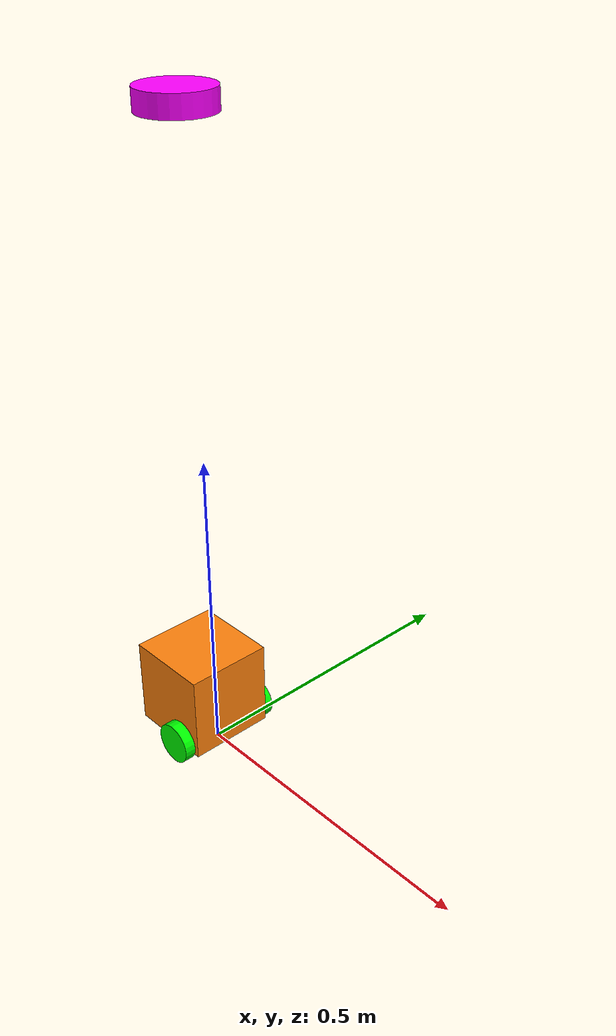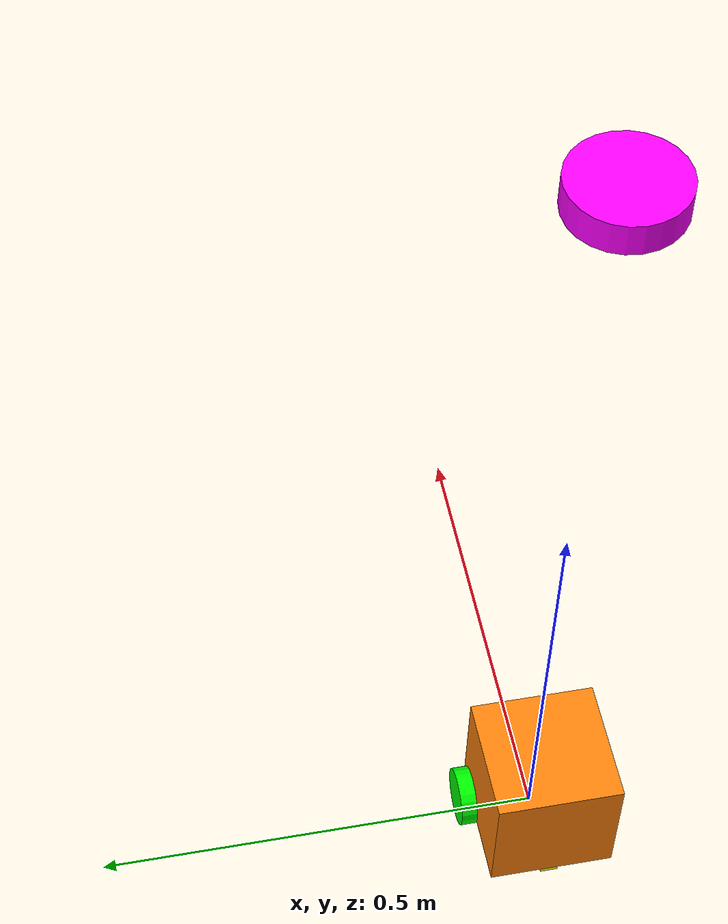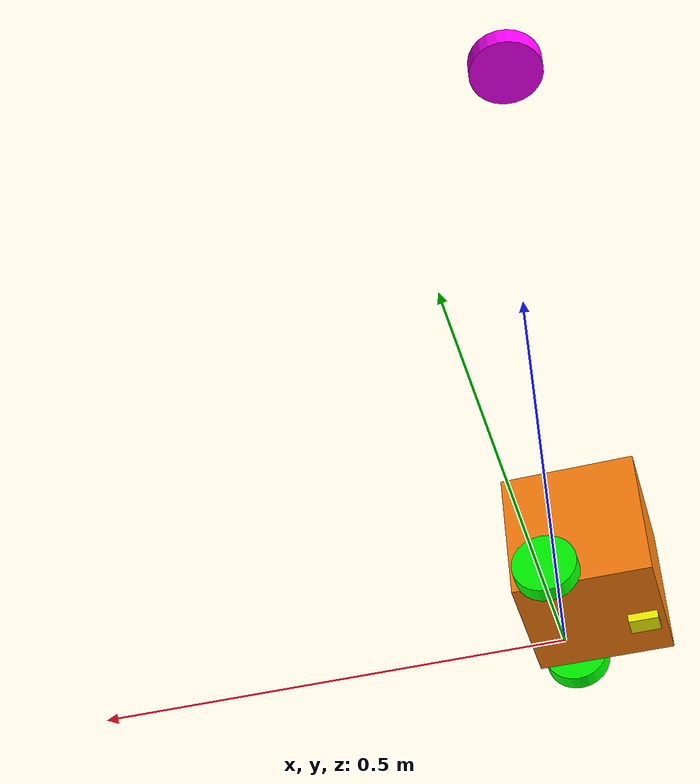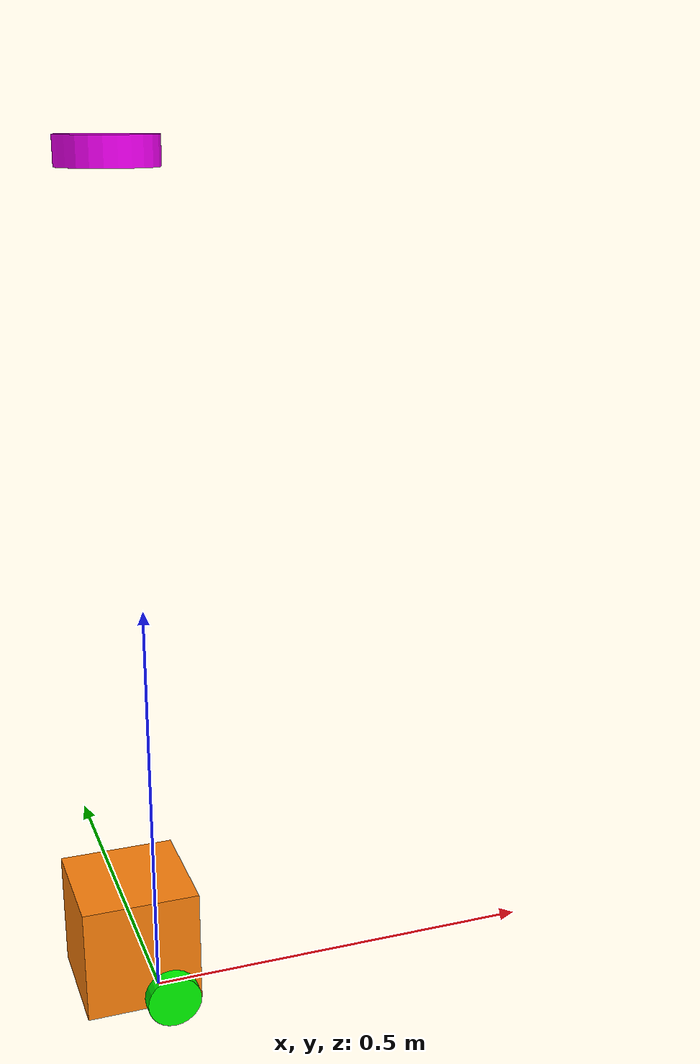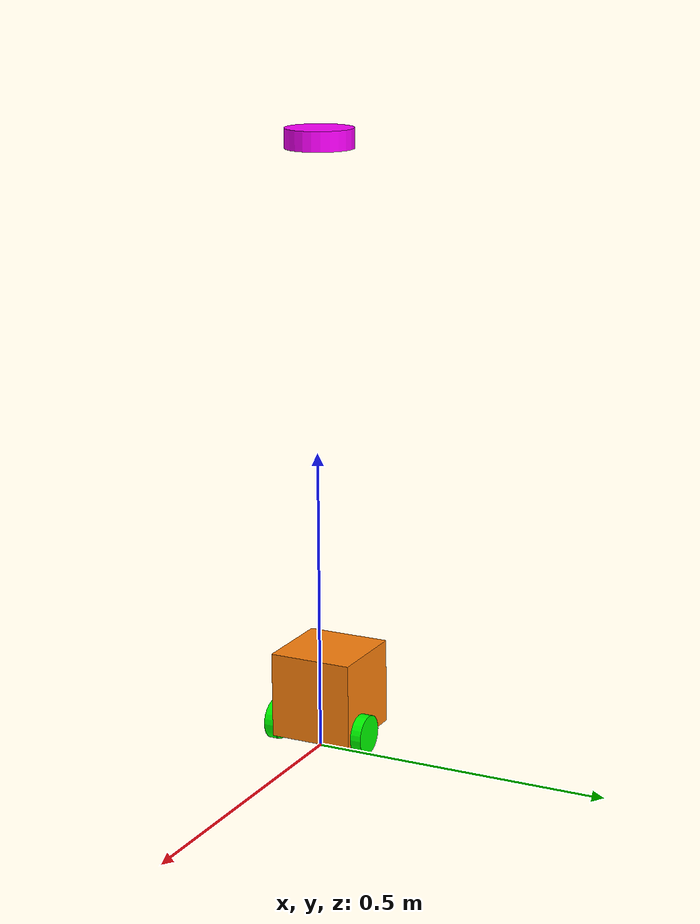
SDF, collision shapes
<?xml version='1.0'?>
<sdf version='1.5'>
  <model name='tergeo'>

    <!-- body -->
    <link name='base_link'>
      <pose>0 0 0.01 0 0 0</pose>

      <!-- body -->
      <visual name='base_visual'>
        <pose>0.06 -0.01 0.0 0 0 0</pose>
        <geometry>
          <mesh>
            <scale>1 1 1</scale>
            <uri>model://model_turtlebot/meshes/sc65b.dae</uri>
          </mesh>
        </geometry>
        <material>
          <!-- Gazebo/Orange -->
          <ambient>1 0.5088 0.0468 1</ambient>
          <diffuse>1 0.5088 0.0468 1</diffuse>
          <specular>0.5 0.5 0.5 128</specular>
        </material>
      </visual>

      <collision name='body_collision'>
        <pose>-0.032 0 0.080 0 0 0</pose>
        <geometry>
          <box>
            <size>0.140 0.140 0.143</size>
          </box>
        </geometry>
      </collision>

      <inertial>
        <pose>0 0 0 0 0 0</pose>
        <mass>8.2573504e-01</mass>
        <inertia>
          <ixx>2.2124416e-03</ixx>
          <iyy>2.1193702e-03</iyy>
          <izz>2.0064271e-03</izz>
          <ixy>-1.2294101e-05</ixy>
          <ixz>3.4938785e-05</ixz>
          <iyz>-5.0120904e-06</iyz>
        </inertia>
      </inertial>
    </link>

    <!-- left wheel joint -->
    <joint name='left_wheel_joint' type='revolute'>
      <parent>base_link</parent>
      <child>left_wheel_link</child>
      <axis>
        <use_parent_model_frame>true</use_parent_model_frame>
        <xyz>0 1 0</xyz>
      </axis>
    </joint>

    <!-- left wheel link -->
    <link name='left_wheel_link'>
      <pose>0.0 0.08 0.033 -1.570796326 0 0</pose>
      <visual name='left_wheel_visual'>
        <pose>0.0 0.0 0.0 1.570796326 0.0 0.0</pose>
        <geometry>
          <mesh>
            <scale>0.001 0.001 0.001</scale>
            <uri>model://model_turtlebot/meshes/wheels/left_tire.stl</uri>
          </mesh>
        </geometry>
        <material>
          <ambient> 0 1 0 </ambient>
          <diffuse> 0 1 0 </diffuse>
          <specular> 0.1 0.1 0.1 1 1 </specular>
        </material>
      </visual>

      <collision name='left_wheel_collision'>
        <pose>0 0 0 0 0 0</pose>
        <geometry>
          <cylinder>
            <radius>0.033</radius>
            <length>0.018</length>
          </cylinder>
        </geometry>
        <surface>
          <friction>
            <ode>
              <mu>0.1</mu>
              <mu2>0.1</mu2>
              <fdir1>1 0 0</fdir1>
            </ode>
          </friction>
          <contact>
            <ode>
              <kp>500000.000000</kp>
              <kd>10.000000</kd>
              <max_vel>0.1</max_vel>
              <min_depth>0.001</min_depth>
            </ode>
          </contact>
        </surface>
      </collision>

      <inertial>
        <pose>0 0 0 0 0 0</pose>
        <mass>2.8498940e-02</mass>
        <inertia>
          <ixx>1.1175580e-05</ixx>
          <iyy>1.1192413e-05</iyy>
          <izz>2.0712558e-05</izz>
          <ixy>-4.2369783e-11</ixy>
          <ixz>-5.9381719e-09</ixz>
          <iyz>-1.4400107e-11</iyz>
        </inertia>
      </inertial>
    </link>

    <!-- right wheel joint -->
    <joint name='right_wheel_joint' type='revolute'>
      <parent>base_link</parent>
      <child>right_wheel_link</child>
      <axis>
        <use_parent_model_frame>true</use_parent_model_frame>
        <xyz>0 1 0</xyz>
      </axis>
    </joint>

    <!-- right wheel link -->
    <link name='right_wheel_link'>
      <pose>0.0 -0.08 0.033 -1.570796326 0 0</pose>
      <visual name='right_wheel_visual'>
        <pose>0.0 0.0 0.0 1.570796326 0.0 0.0</pose>
        <geometry>
          <mesh>
            <scale>0.001 0.001 0.001</scale>
            <uri>model://model_turtlebot/meshes/wheels/right_tire.stl</uri>
          </mesh>
        </geometry>
        <material>
          <ambient> 0 1 0 </ambient>
          <diffuse> 0 1 0 </diffuse>
          <specular> 0.1 0.1 0.1 1 1 </specular>
        </material>
      </visual>

      <collision name='right_wheel_collision'>
        <pose>0 0 0 0 0 0</pose>
        <geometry>
          <cylinder>
            <radius>0.033</radius>
            <length>0.018</length>
          </cylinder>
        </geometry>
        <surface>
          <friction>
            <ode>
              <mu>0.1</mu>
              <mu2>0.1</mu2>
              <fdir1>1 0 0</fdir1>
            </ode>
          </friction>
          <contact>
            <ode>
              <kp>500000.000000</kp>
              <kd>10.000000</kd>
              <max_vel>0.1</max_vel>
              <min_depth>0.001</min_depth>
            </ode>
          </contact>
        </surface>
      </collision>

      <inertial>
        <pose>0 0 0 0 0 0</pose>
        <mass>2.8498940e-02</mass>
        <inertia>
          <ixx>1.1175580e-05</ixx>
          <iyy>1.1192413e-05</iyy>
          <izz>2.0712558e-05</izz>
          <ixy>-4.2369783e-11</ixy>
          <ixz>-5.9381719e-09</ixz>
          <iyz>-1.4400107e-11</iyz>
        </inertia>
      </inertial>
    </link>

    <!-- model plugin  -->
    <!-- diff drive plugin -->
    <plugin name="tergeo_controller" filename="libgazebo_ros_diff_drive.so">
      <commandTopic>cmd_vel</commandTopic>
      <odometryTopic>odom</odometryTopic>
      <odometryFrame>odom</odometryFrame>
      <odometrySource>world</odometrySource>
      <publishOdomTF>true</publishOdomTF>
      <robotBaseFrame>world</robotBaseFrame>
      <publishWheelTF>false</publishWheelTF>
      <publishTf>true</publishTf>
      <publishWheelJointState>true</publishWheelJointState>
      <legacyMode>false</legacyMode>
      <updateRate>30</updateRate>
      <leftJoint>left_wheel_joint</leftJoint>
      <rightJoint>right_wheel_joint</rightJoint>
      <wheelSeparation>0.160</wheelSeparation>
      <wheelDiameter>0.066</wheelDiameter>
      <wheelAcceleration>1</wheelAcceleration>
      <wheelTorque>10</wheelTorque>
      <rosDebugLevel>na</rosDebugLevel>
    </plugin>

    <!-- caster joint -->
    <joint name='caster_joint' type='fixed'>
      <parent>base_link</parent>
      <child>caster_link</child>
    </joint>

    <!-- caster link -->
    <link name='caster_link'>
      <pose>-0.081 0.0 0.006 -1.570796326 0 0</pose>
      <visual name='caster_visual'>
        <pose>0 0 0 0 0 0</pose>
        <geometry>
          <box>
            <size>0.030 0.009 0.020</size>
          </box>
        </geometry>
        <material>
          <ambient> 1 1 0 1 </ambient>
          <diffuse> 1 1 0 1 </diffuse>
          <specular> 0 0 0 0 0 </specular>
        </material>
      </visual>

      <collision name='caster_collision'>
        <pose>0 0 0 0 0 0</pose>
        <geometry>
          <box>
            <size>0.030 0.009 0.020</size>
          </box>
        </geometry>
        <surface>
          <friction>
            <ode>
              <mu>0.1</mu>
              <mu2>0.1</mu2>
            </ode>
          </friction>
          <contact>
            <ode>
              <kp>1000000.000000</kp>
              <kd>100.000000</kd>
              <max_vel>1.0</max_vel>
              <min_depth>0.001</min_depth>
            </ode>
          </contact>
        </surface>
      </collision>

      <inertial>
        <pose>0 0 0 0 0 0</pose>
        <mass>0.010</mass>
        <inertia>
          <ixx>0.002</ixx>
          <iyy>0.002</iyy>
          <izz>0.002</izz>
        </inertia>
      </inertial>
    </link>

    <!-- lidar joint  -->
    <joint name='lidar_joint' type='fixed'>
      <parent>base_link</parent>
      <child>lidar_link</child>
    </joint>

    <!-- lidar link -->
    <link name="lidar_link">
      <pose>-0.017 0 1.0 0 0 0</pose>
      <visual name='lidar_visual'>
        <geometry>
          <cylinder>
            <radius>0.0550</radius>
            <length>0.0315</length>
          </cylinder>
        </geometry>
        <material>
          <ambient> 1 0 1 </ambient>
          <diffuse> 1 0 1 </diffuse>
          <specular> 0.1 0.1 0.1 1 1 </specular>
        </material>
      </visual>

      <collision name='lidar_collision'>
        <geometry>
          <cylinder>
            <radius>0.0550</radius>
            <length>0.0315</length>
          </cylinder>
        </geometry>
      </collision>

      <inertial>
        <pose>0 0 0 0 0 0</pose>
        <mass>0.114</mass>
        <inertia>
          <ixx>0.001</ixx>
          <iyy>0.001</iyy>
          <izz>0.001</izz>
        </inertia>
      </inertial>

      <sensor type="ray" name="laser_16">
        <pose>0 0 0 0 0 0</pose>
        <always_on>true</always_on>
        <visualize>false</visualize>
        <update_rate>10</update_rate>
        <ray>
          <scan>
            <horizontal>
              <samples>180</samples>
              <resolution>1</resolution>
              <min_angle>-3.1415</min_angle>
              <max_angle>3.1415</max_angle>
            </horizontal>
            <vertical>
              <samples>16</samples>
              <resolution>1</resolution>
              <min_angle>-0.2618</min_angle>
              <max_angle>0.2618</max_angle>
            </vertical>
          </scan>
          <range>
            <min>0.2</min>
            <max>10.0</max>
            <resolution>0.02</resolution>
          </range>
          <noise>
            <type>gaussian</type>
            <mean>0.0</mean>
            <stddev>0.0</stddev>
          </noise>
        </ray>
        <!-- sensor plugin for lidar -->
        <plugin name="lidar_sensor" filename="libgazebo_ros_velodyne_laser.so">
          <robotNamespace>tergeo</robotNamespace>
          <topicName>/sensor/lidar16/top/pointcloud</topicName>
          <frameName>top_lidar16_link</frameName>
          <min_range>0.2</min_range>
          <max_range>10.0</max_range>
          <gaussianNoise>0.02</gaussianNoise>
        </plugin>
      </sensor>
    </link>

    <!-- imu joint -->
    <joint name='imu_joint' type='fixed'>
      <parent>base_link</parent>
      <child>imu_link</child>
    </joint>

    <!-- imu link -->
    <link name='imu_link'>
      <pose>-0.032 0 0.068 0 0 0</pose>
      <visual name='imu_visual'>
        <geometry>
          <cylinder>
            <radius>0.01</radius>
            <length>0.005</length>
          </cylinder>
        </geometry>
        <material>
          <ambient> 0 0 1 </ambient>
          <diffuse> 0 0 1 </diffuse>
          <specular> 0.1 0.1 0.1 1 1 </specular>
        </material>
      </visual>

      <collision name='imu_collision'>
        <geometry>
          <cylinder>
            <radius>0.01</radius>
            <length>0.005</length>
          </cylinder>
        </geometry>
      </collision>

      <inertial>
        <pose>0 0 0 0 0 0</pose>
        <mass>0.01</mass>
        <inertia>
          <ixx>0.001</ixx>
          <iyy>0.001</iyy>
          <izz>0.001</izz>
        </inertia>
      </inertial>

      <sensor type="imu" name='imu_sensor'>
        <always_on>true</always_on>
        <visualize>false</visualize>
        <imu>
          <linear_acceleration>
            <x>
              <noise type='gaussian'>
                <mean>0.0</mean>
                <stddev>2e-4</stddev>
                <bias_mean>0.0000075</bias_mean>
                <bias_stddev>0.0000008</bias_stddev>
              </noise>
            </x>
          </linear_acceleration>
        </imu>

        <plugin name="imu_plugin" filename="libgazebo_ros_imu_sensor.so">
          <topicName>/sensor/imu/center/pose</topicName>
          <bodyName>imu_link</bodyName>
          <frameName>imu_link</frameName>
          <serviceName>imu_service</serviceName>
          <gaussianNoise>0.0</gaussianNoise>
          <updateRateHZ>60</updateRateHZ>
          <xyzOffset>0 0 0</xyzOffset>
          <rpyOffset>0 0 0</rpyOffset>
        </plugin>
      </sensor>
    </link>

    <!-- sonar template -->
    <!-- sonar 01 joint -->

    <!-- sonar 01 link -->
        <!-- sensor plugin for sonar -->
  </model>
</sdf>
